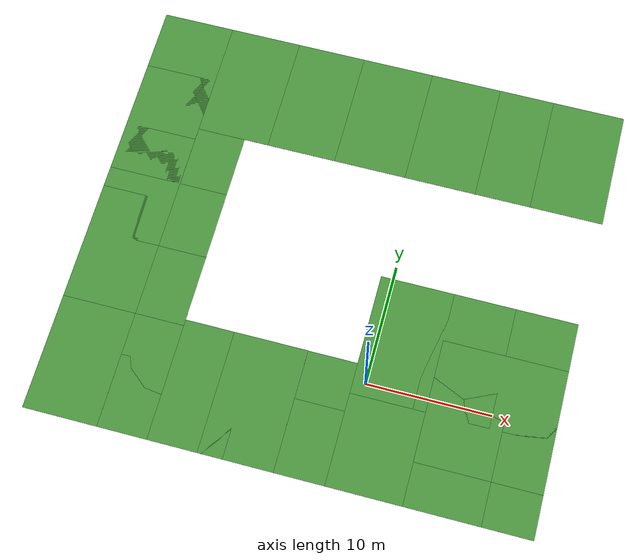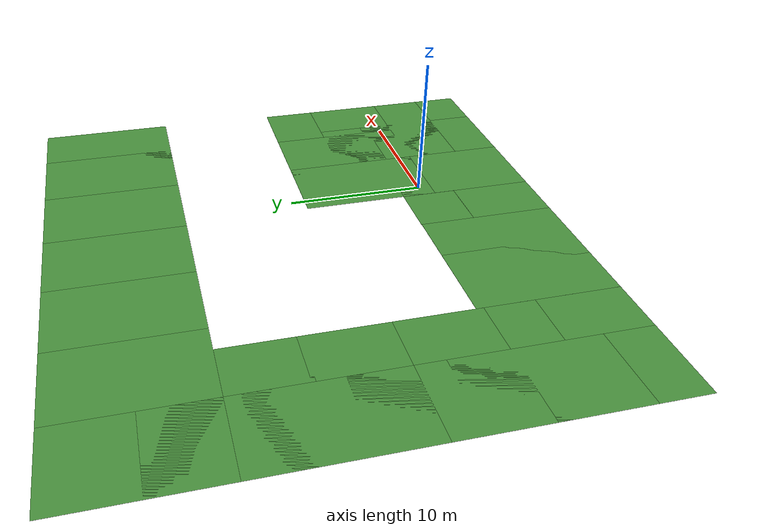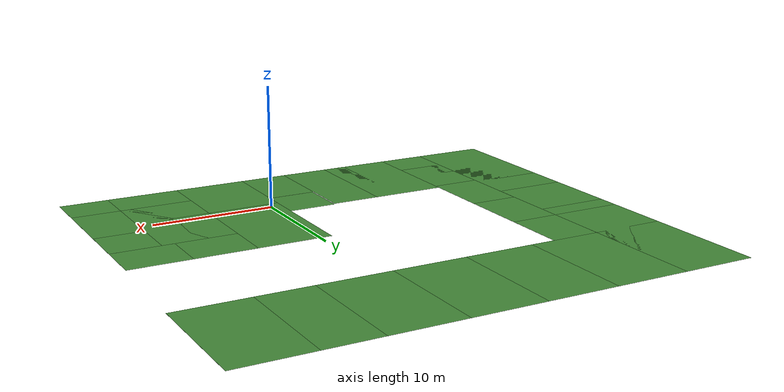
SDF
<sdf version="1.5">
 <world name="default">
  <physics name="ode_70iters" type="ode">
   <max_step_size>0.001</max_step_size>
   <real_time_update_rate>1000</real_time_update_rate>
   <ode><solver><type>quick</type><iters>70</iters></solver></ode>
  </physics>
  <include><uri>model://garden</uri><name>garden_0</name><pose>0 0.5 0 0 0 1.5708</pose></include>
  <include><uri>model://garden</uri><name>garden_1</name><pose>10 0 0 0 0 1.5708</pose></include>
  <include><uri>model://garden</uri><name>garden_2</name><pose>10 0 0 0 0 0</pose></include>
  <include><uri>model://garden</uri><name>garden_3</name><pose>4 4 0 0 0 0</pose></include>
  <include><uri>model://garden</uri><name>garden_4</name><pose>9 4 0 0 0 0</pose></include>
  <include><uri>model://garden</uri><name>garden_5</name><pose>10 4 0 0 0 1.5708</pose></include>
  <include><uri>model://garden</uri><name>garden_6</name><pose>3.75 23 0 0 0 0</pose></include>
  <include><uri>model://garden</uri><name>garden_7</name><pose>-10 -3.5 0 0 0 0</pose></include>
  <include><uri>model://garden</uri><name>garden_8</name><pose>-6 -3.5 0 0 0 0</pose></include>
  <include><uri>model://garden</uri><name>garden_9</name><pose>-20 0 0 0 0 0</pose></include>
  <include><uri>model://garden</uri><name>garden_10</name><pose>-20 6 0 0 0 0</pose></include>
  <include><uri>model://garden</uri><name>garden_11</name><pose>-20 12 0 0 0 0</pose></include>
  <include><uri>model://garden</uri><name>garden_12</name><pose>-20 17.75 0 0 0 0</pose></include>
  <include><uri>model://garden</uri><name>garden_13</name><pose>-20 23 0 0 0 0</pose></include>
  <include><uri>model://garden</uri><name>garden_14</name><pose>-14 23 0 0 0 0</pose></include>
  <include><uri>model://garden</uri><name>garden_15</name><pose>-8 23 0 0 0 0</pose></include>
  <include><uri>model://garden</uri><name>garden_16</name><pose>-2.25 23 0 0 0 0</pose></include>
  <include><uri>model://garden</uri><name>garden_17</name><pose>-20 -3.5 0 0 0 0</pose></include>
  <include><uri>model://garden</uri><name>garden_18</name><pose>4 -3.5 0 0 0 0</pose></include>
  <include><uri>model://garden</uri><name>garden_19</name><pose>10 -3.5 0 0 0 0</pose></include>
  <include><uri>model://garden</uri><name>garden_20</name><pose>9.66 23 0 0 0 0</pose></include>
  <include><uri>model://garden</uri><name>garden_21</name><pose>10.25 23 0 0 0 3.14159</pose></include>
  <include><uri>model://sun</uri></include>
 </world>
</sdf>

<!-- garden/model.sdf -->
<sdf version="1.5">
<model name="garden">
  <static>true</static>
    <link name="link">

	  <!-- TODO: Get own image for texture and figure out how to generate arbitrarily shaped environments -->

	  <!-- Define first a large collision plane -->
      <collision name="collision">
        <geometry>
          <plane>
            <normal>0 0 1</normal>
            <size>100 100</size>
          </plane>
        </geometry>
        <surface>
          <friction>
            <ode>
              <mu>100</mu>
              <mu2>50</mu2>
            </ode>
          </friction>
        </surface>
      </collision>

      <!-- Now we define the visuals -->
      <visual name="visual_0">
		<pose>-2 0 0 0 0 0</pose>
        <cast_shadows>false</cast_shadows>
        <geometry>
          <plane>
            <normal>0 0 1</normal>
            <size>6 10</size>
          </plane>
        </geometry>
        <material>
		  <script>
		    <uri>model://garden/materials/scripts</uri>
		    <uri>model://garden/materials/textures</uri>
		    <name>vrc/grass</name>
		  </script>
        </material>
      </visual>

      <visual name="visual_1">
		<pose>3 -2 0 0 0 0</pose>
        <cast_shadows>false</cast_shadows>
        <geometry>
          <plane>
            <normal>0 0 1</normal>
            <size>4 6</size>
          </plane>
        </geometry>
        <material>
		  <script>
		    <uri>model://garden/materials/scripts</uri>
		    <uri>model://garden/materials/textures</uri>
		    <name>vrc/grass</name>
		  </script>
        </material>
      </visual>

    </link>
  </model>
</sdf>
